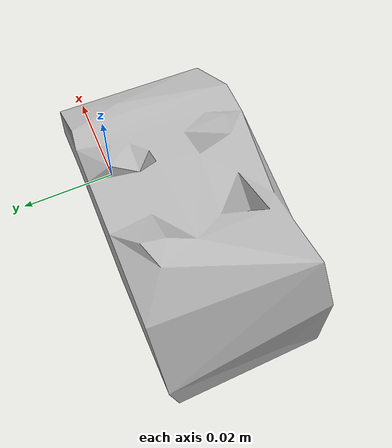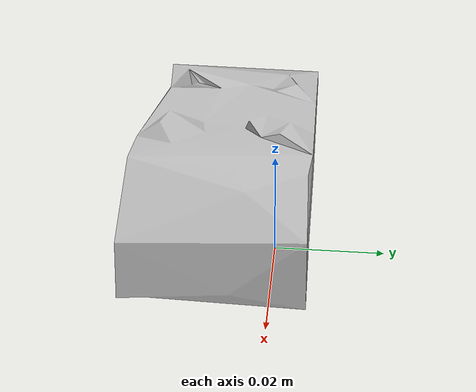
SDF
<?xml version='1.0'?>
<sdf version="1.4">
  <model name="073-a_lego_duplo">
    <static>false</static>
    <link name="link">
      <inertial>
        <pose>-0.016551543364975146 -0.009584927213680646 0.00977998594656364 1.1626494039619317 -1.5685441050934106 -1.1688695239300484</pose>
        <mass>0.0038838679702763077</mass>
        <inertia>
          <ixx>1.3287547029724898e-06</ixx>
          <ixy>6.3125816524602115e-24</ixy>
          <ixz>-5.256162018835344e-25</ixz>
          <iyy>1.1609447368701676e-06</iyy>
          <iyz>-1.0011700494368119e-24</iyz>
          <izz>4.802975140818786e-07</izz>
        </inertia>
      </inertial>
      <collision name="collision">
        <geometry>
          <mesh>
            <!-- Use a downsampled mesh for collisions -->
            <uri>model:///073-a_lego_duplo/073-a_lego_duplo_250_collision.stl</uri>
	        </mesh>
        </geometry>
        <surface>
      </surface>
      </collision>
      <visual name="visual">
        <geometry>
          <mesh>
            <uri>model:///073-a_lego_duplo/textured.obj</uri>
	        </mesh>
        </geometry>
        <material>
          <script>
            <uri>model:///073-a_lego_duplo/073-a_lego_duplo.material</uri>
            <name>073-a_lego_duplo</name>
          </script>
        </material>
      </visual>
    </link>
  </model>
</sdf>
